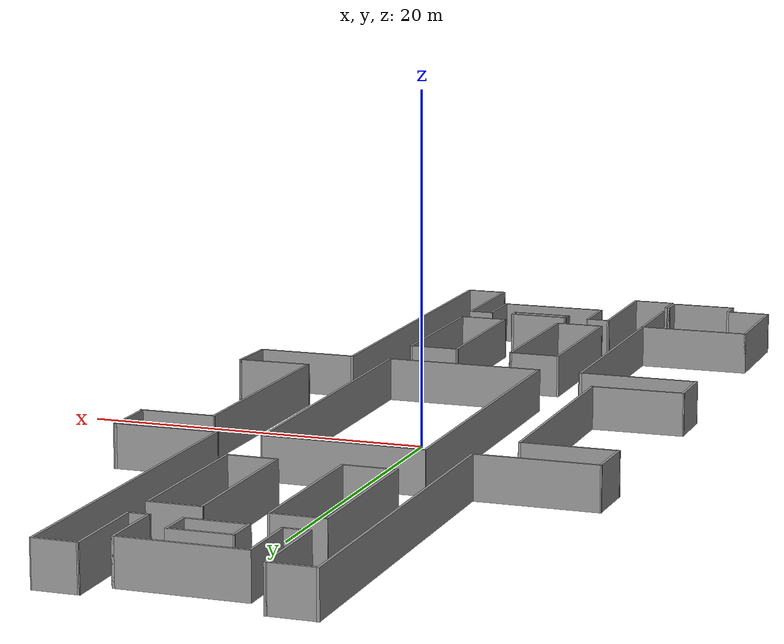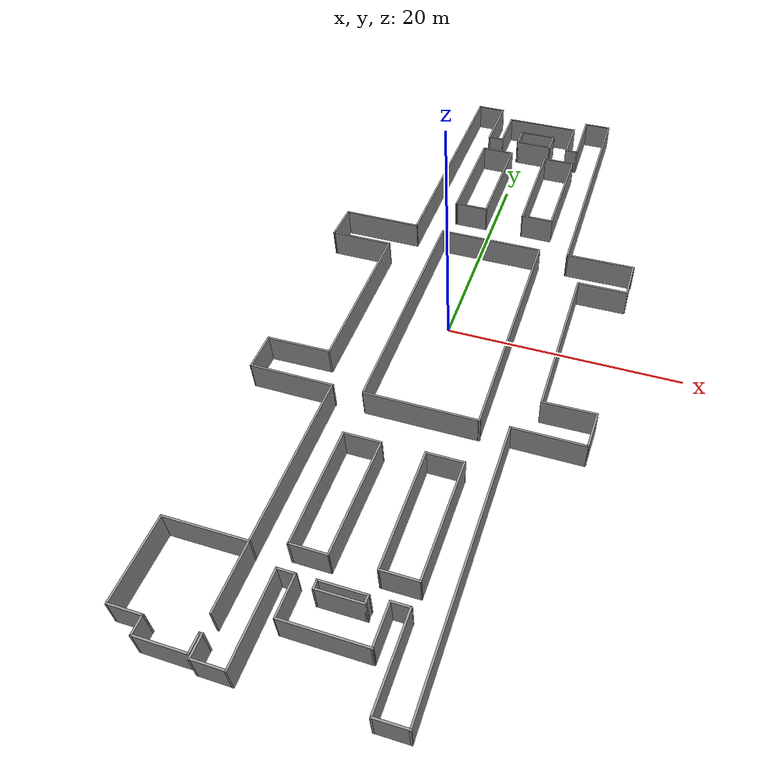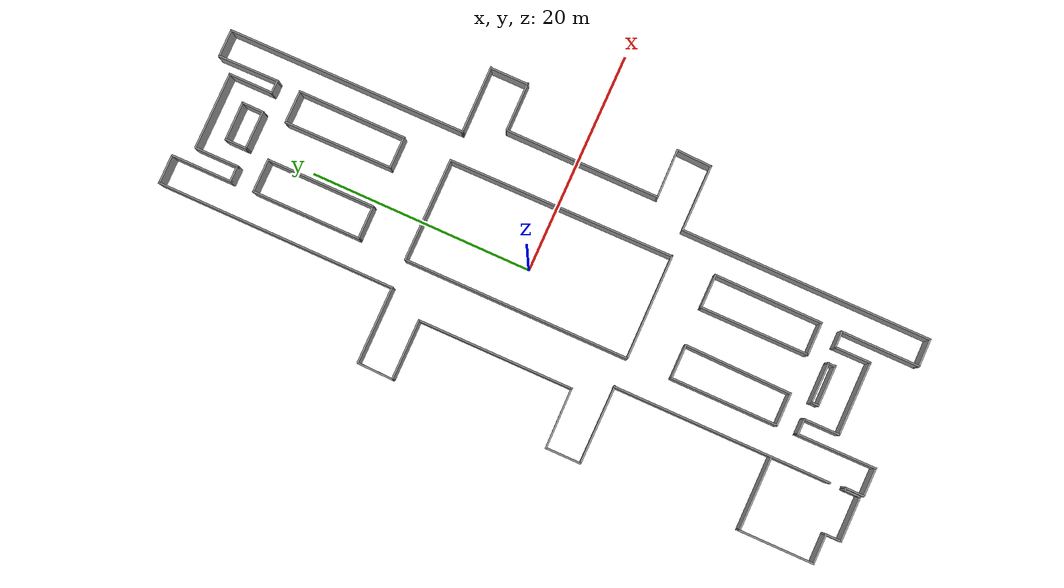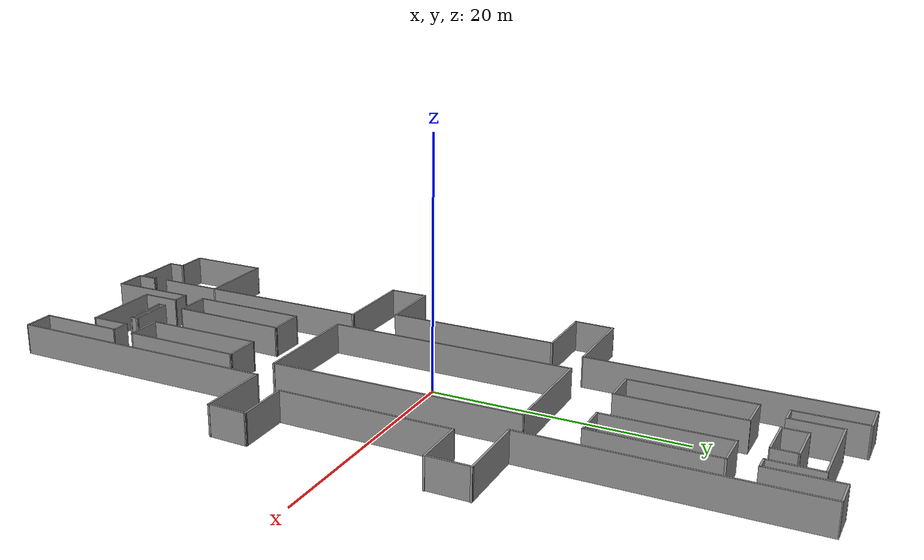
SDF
<?xml version='1.0'?>
<sdf version='1.7'>
  <model name='f21_wall_full'>
    <pose>0.508915 -0.874655 0 0 -0 0</pose>
    <link name='Wall_0'>
      <collision name='Wall_0_Collision'>
        <geometry>
          <box>
            <size>14 0.15 2.5</size>
          </box>
        </geometry>
        <pose>0 0 1.25 0 -0 0</pose>
      </collision>
      <visual name='Wall_0_Visual'>
        <pose>0 0 1.25 0 -0 0</pose>
        <geometry>
          <box>
            <size>14 0.15 2.5</size>
          </box>
        </geometry>
        <material>
          <script>
            <uri>file://media/materials/scripts/gazebo.material</uri>
            <name>Gazebo/Grey</name>
          </script>
          <ambient>1 1 1 1</ambient>
        </material>
        <meta>
          <layer>0</layer>
        </meta>
      </visual>
      <pose>-8.23501 0.501964 0 0 -0 1.5708</pose>
    </link>
    <link name='Wall_10'>
      <collision name='Wall_10_Collision'>
        <geometry>
          <box>
            <size>5.5 0.15 2.5</size>
          </box>
        </geometry>
        <pose>0 0 1.25 0 -0 0</pose>
      </collision>
      <visual name='Wall_10_Visual'>
        <pose>0 0 1.25 0 -0 0</pose>
        <geometry>
          <box>
            <size>5.5 0.15 2.5</size>
          </box>
        </geometry>
        <material>
          <script>
            <uri>file://media/materials/scripts/gazebo.material</uri>
            <name>Gazebo/Grey</name>
          </script>
          <ambient>1 1 1 1</ambient>
        </material>
        <meta>
          <layer>0</layer>
        </meta>
      </visual>
      <pose>-10.9094 7.42631 0 0 -0 0</pose>
    </link>
    <link name='Wall_100'>
      <collision name='Wall_100_Collision'>
        <geometry>
          <box>
            <size>6.96941 0.15 2.5</size>
          </box>
        </geometry>
        <pose>0 0 1.25 0 -0 0</pose>
      </collision>
      <visual name='Wall_100_Visual'>
        <pose>0 0 1.25 0 -0 0</pose>
        <geometry>
          <box>
            <size>6.96941 0.15 2.5</size>
          </box>
        </geometry>
        <material>
          <script>
            <uri>file://media/materials/scripts/gazebo.material</uri>
            <name>Gazebo/Grey</name>
          </script>
          <ambient>1 1 1 1</ambient>
        </material>
        <meta>
          <layer>0</layer>
        </meta>
      </visual>
      <pose>0.726087 30.4362 0 0 -0 0</pose>
    </link>
    <link name='Wall_101'>
      <collision name='Wall_101_Collision'>
        <geometry>
          <box>
            <size>4 0.15 2.5</size>
          </box>
        </geometry>
        <pose>0 0 1.25 0 -0 0</pose>
      </collision>
      <visual name='Wall_101_Visual'>
        <pose>0 0 1.25 0 -0 0</pose>
        <geometry>
          <box>
            <size>4 0.15 2.5</size>
          </box>
        </geometry>
        <material>
          <script>
            <uri>file://media/materials/scripts/gazebo.material</uri>
            <name>Gazebo/Grey</name>
          </script>
          <ambient>1 1 1 1</ambient>
        </material>
        <meta>
          <layer>0</layer>
        </meta>
      </visual>
      <pose>4.13579 28.5112 0 0 -0 -1.5708</pose>
    </link>
    <link name='Wall_103'>
      <collision name='Wall_103_Collision'>
        <geometry>
          <box>
            <size>2 0.15 2.5</size>
          </box>
        </geometry>
        <pose>0 0 1.25 0 -0 0</pose>
      </collision>
      <visual name='Wall_103_Visual'>
        <pose>0 0 1.25 0 -0 0</pose>
        <geometry>
          <box>
            <size>2 0.15 2.5</size>
          </box>
        </geometry>
        <material>
          <script>
            <uri>file://media/materials/scripts/gazebo.material</uri>
            <name>Gazebo/Grey</name>
          </script>
          <ambient>1 1 1 1</ambient>
        </material>
        <meta>
          <layer>0</layer>
        </meta>
      </visual>
      <pose>-1.00987 27.4939 0 0 -0 -1.5708</pose>
    </link>
    <link name='Wall_104'>
      <collision name='Wall_104_Collision'>
        <geometry>
          <box>
            <size>3.5 0.15 2.5</size>
          </box>
        </geometry>
        <pose>0 0 1.25 0 -0 0</pose>
      </collision>
      <visual name='Wall_104_Visual'>
        <pose>0 0 1.25 0 -0 0</pose>
        <geometry>
          <box>
            <size>3.5 0.15 2.5</size>
          </box>
        </geometry>
        <material>
          <script>
            <uri>file://media/materials/scripts/gazebo.material</uri>
            <name>Gazebo/Grey</name>
          </script>
          <ambient>1 1 1 1</ambient>
        </material>
        <meta>
          <layer>0</layer>
        </meta>
      </visual>
      <pose>0.665126 26.5689 0 0 -0 0</pose>
    </link>
    <link name='Wall_105'>
      <collision name='Wall_105_Collision'>
        <geometry>
          <box>
            <size>2 0.15 2.5</size>
          </box>
        </geometry>
        <pose>0 0 1.25 0 -0 0</pose>
      </collision>
      <visual name='Wall_105_Visual'>
        <pose>0 0 1.25 0 -0 0</pose>
        <geometry>
          <box>
            <size>2 0.15 2.5</size>
          </box>
        </geometry>
        <material>
          <script>
            <uri>file://media/materials/scripts/gazebo.material</uri>
            <name>Gazebo/Grey</name>
          </script>
          <ambient>1 1 1 1</ambient>
        </material>
        <meta>
          <layer>0</layer>
        </meta>
      </visual>
      <pose>2.35387 27.4939 0 0 -0 1.55594</pose>
    </link>
    <link name='Wall_12'>
      <collision name='Wall_12_Collision'>
        <geometry>
          <box>
            <size>7.10388 0.15 2.5</size>
          </box>
        </geometry>
        <pose>0 0 1.25 0 -0 0</pose>
      </collision>
      <visual name='Wall_12_Visual'>
        <pose>0 0 1.25 0 -0 0</pose>
        <geometry>
          <box>
            <size>7.10388 0.15 2.5</size>
          </box>
        </geometry>
        <material>
          <script>
            <uri>file://media/materials/scripts/gazebo.material</uri>
            <name>Gazebo/Grey</name>
          </script>
          <ambient>1 1 1 1</ambient>
        </material>
        <meta>
          <layer>0</layer>
        </meta>
      </visual>
      <pose>-10.0796 -9.60166 0 0 -0 3.13651</pose>
    </link>
    <link name='Wall_13'>
      <collision name='Wall_13_Collision'>
        <geometry>
          <box>
            <size>3.25 0.15 2.5</size>
          </box>
        </geometry>
        <pose>0 0 1.25 0 -0 0</pose>
      </collision>
      <visual name='Wall_13_Visual'>
        <pose>0 0 1.25 0 -0 0</pose>
        <geometry>
          <box>
            <size>3.25 0.15 2.5</size>
          </box>
        </geometry>
        <material>
          <script>
            <uri>file://media/materials/scripts/gazebo.material</uri>
            <name>Gazebo/Grey</name>
          </script>
          <ambient>1 1 1 1</ambient>
        </material>
        <meta>
          <layer>0</layer>
        </meta>
      </visual>
      <pose>-13.5565 -8.03397 0 0 -0 1.5708</pose>
    </link>
    <link name='Wall_14'>
      <collision name='Wall_14_Collision'>
        <geometry>
          <box>
            <size>5.45226 0.15 2.5</size>
          </box>
        </geometry>
        <pose>0 0 1.25 0 -0 0</pose>
      </collision>
      <visual name='Wall_14_Visual'>
        <pose>0 0 1.25 0 -0 0</pose>
        <geometry>
          <box>
            <size>5.45226 0.15 2.5</size>
          </box>
        </geometry>
        <material>
          <script>
            <uri>file://media/materials/scripts/gazebo.material</uri>
            <name>Gazebo/Grey</name>
          </script>
          <ambient>1 1 1 1</ambient>
        </material>
        <meta>
          <layer>0</layer>
        </meta>
      </visual>
      <pose>-10.9056 -6.45062 0 0 -0 0.012581</pose>
    </link>
    <link name='Wall_16'>
      <collision name='Wall_16_Collision'>
        <geometry>
          <box>
            <size>6.09869 0.15 2.5</size>
          </box>
        </geometry>
        <pose>0 0 1.25 0 -0 0</pose>
      </collision>
      <visual name='Wall_16_Visual'>
        <pose>0 0 1.25 0 -0 0</pose>
        <geometry>
          <box>
            <size>6.09869 0.15 2.5</size>
          </box>
        </geometry>
        <material>
          <script>
            <uri>file://media/materials/scripts/gazebo.material</uri>
            <name>Gazebo/Grey</name>
          </script>
          <ambient>1 1 1 1</ambient>
        </material>
        <meta>
          <layer>0</layer>
        </meta>
      </visual>
      <pose>10.6113 10.6598 0 0 -0 0.009045</pose>
    </link>
    <link name='Wall_17'>
      <collision name='Wall_17_Collision'>
        <geometry>
          <box>
            <size>3.5 0.15 2.5</size>
          </box>
        </geometry>
        <pose>0 0 1.25 0 -0 0</pose>
      </collision>
      <visual name='Wall_17_Visual'>
        <pose>0 0 1.25 0 -0 0</pose>
        <geometry>
          <box>
            <size>3.5 0.15 2.5</size>
          </box>
        </geometry>
        <material>
          <script>
            <uri>file://media/materials/scripts/gazebo.material</uri>
            <name>Gazebo/Grey</name>
          </script>
          <ambient>1 1 1 1</ambient>
        </material>
        <meta>
          <layer>0</layer>
        </meta>
      </visual>
      <pose>13.5317 9.01168 0 0 -0 -1.5708</pose>
    </link>
    <link name='Wall_18'>
      <collision name='Wall_18_Collision'>
        <geometry>
          <box>
            <size>4.46718 0.15 2.5</size>
          </box>
        </geometry>
        <pose>0 0 1.25 0 -0 0</pose>
      </collision>
      <visual name='Wall_18_Visual'>
        <pose>0 0 1.25 0 -0 0</pose>
        <geometry>
          <box>
            <size>4.46718 0.15 2.5</size>
          </box>
        </geometry>
        <material>
          <script>
            <uri>file://media/materials/scripts/gazebo.material</uri>
            <name>Gazebo/Grey</name>
          </script>
          <ambient>1 1 1 1</ambient>
        </material>
        <meta>
          <layer>0</layer>
        </meta>
      </visual>
      <pose>11.427 7.3229 0 0 -0 -3.13521</pose>
    </link>
    <link name='Wall_19'>
      <collision name='Wall_19_Collision'>
        <geometry>
          <box>
            <size>13.9255 0.15 2.5</size>
          </box>
        </geometry>
        <pose>0 0 1.25 0 -0 0</pose>
      </collision>
      <visual name='Wall_19_Visual'>
        <pose>0 0 1.25 0 -0 0</pose>
        <geometry>
          <box>
            <size>13.9255 0.15 2.5</size>
          </box>
        </geometry>
        <material>
          <script>
            <uri>file://media/materials/scripts/gazebo.material</uri>
            <name>Gazebo/Grey</name>
          </script>
          <ambient>1 1 1 1</ambient>
        </material>
        <meta>
          <layer>0</layer>
        </meta>
      </visual>
      <pose>9.26384 0.421354 0 0 -0 -1.57147</pose>
    </link>
    <link name='Wall_20'>
      <collision name='Wall_20_Collision'>
        <geometry>
          <box>
            <size>4.43169 0.15 2.5</size>
          </box>
        </geometry>
        <pose>0 0 1.25 0 -0 0</pose>
      </collision>
      <visual name='Wall_20_Visual'>
        <pose>0 0 1.25 0 -0 0</pose>
        <geometry>
          <box>
            <size>4.43169 0.15 2.5</size>
          </box>
        </geometry>
        <material>
          <script>
            <uri>file://media/materials/scripts/gazebo.material</uri>
            <name>Gazebo/Grey</name>
          </script>
          <ambient>1 1 1 1</ambient>
        </material>
        <meta>
          <layer>0</layer>
        </meta>
      </visual>
      <pose>11.3997 -6.43782 0 0 -0 0.017438</pose>
    </link>
    <link name='Wall_21'>
      <collision name='Wall_21_Collision'>
        <geometry>
          <box>
            <size>3.25669 0.15 2.5</size>
          </box>
        </geometry>
        <pose>0 0 1.25 0 -0 0</pose>
      </collision>
      <visual name='Wall_21_Visual'>
        <pose>0 0 1.25 0 -0 0</pose>
        <geometry>
          <box>
            <size>3.25669 0.15 2.5</size>
          </box>
        </geometry>
        <material>
          <script>
            <uri>file://media/materials/scripts/gazebo.material</uri>
            <name>Gazebo/Grey</name>
          </script>
          <ambient>1 1 1 1</ambient>
        </material>
        <meta>
          <layer>0</layer>
        </meta>
      </visual>
      <pose>13.4865 -7.95323 0 0 -0 -1.6054</pose>
    </link>
    <link name='Wall_22'>
      <collision name='Wall_22_Collision'>
        <geometry>
          <box>
            <size>6 0.15 2.5</size>
          </box>
        </geometry>
        <pose>0 0 1.25 0 -0 0</pose>
      </collision>
      <visual name='Wall_22_Visual'>
        <pose>0 0 1.25 0 -0 0</pose>
        <geometry>
          <box>
            <size>6 0.15 2.5</size>
          </box>
        </geometry>
        <material>
          <script>
            <uri>file://media/materials/scripts/gazebo.material</uri>
            <name>Gazebo/Grey</name>
          </script>
          <ambient>1 1 1 1</ambient>
        </material>
        <meta>
          <layer>0</layer>
        </meta>
      </visual>
      <pose>10.528 -9.50596 0 0 -0 3.14159</pose>
    </link>
    <link name='Wall_23'>
      <collision name='Wall_23_Collision'>
        <geometry>
          <box>
            <size>22.523 0.15 2.5</size>
          </box>
        </geometry>
        <pose>0 0 1.25 0 -0 0</pose>
      </collision>
      <visual name='Wall_23_Visual'>
        <pose>0 0 1.25 0 -0 0</pose>
        <geometry>
          <box>
            <size>22.523 0.15 2.5</size>
          </box>
        </geometry>
        <material>
          <script>
            <uri>file://media/materials/scripts/gazebo.material</uri>
            <name>Gazebo/Grey</name>
          </script>
          <ambient>1 1 1 1</ambient>
        </material>
        <meta>
          <layer>0</layer>
        </meta>
      </visual>
      <pose>7.57788 -20.6922 0 0 -0 -1.57123</pose>
    </link>
    <link name='Wall_24'>
      <collision name='Wall_24_Collision'>
        <geometry>
          <box>
            <size>2.54909 0.15 2.5</size>
          </box>
        </geometry>
        <pose>0 0 1.25 0 -0 0</pose>
      </collision>
      <visual name='Wall_24_Visual'>
        <pose>0 0 1.25 0 -0 0</pose>
        <geometry>
          <box>
            <size>2.54909 0.15 2.5</size>
          </box>
        </geometry>
        <material>
          <script>
            <uri>file://media/materials/scripts/gazebo.material</uri>
            <name>Gazebo/Grey</name>
          </script>
          <ambient>1 1 1 1</ambient>
        </material>
        <meta>
          <layer>0</layer>
        </meta>
      </visual>
      <pose>6.37349 -31.8788 0 0 -0 -3.13284</pose>
    </link>
    <link name='Wall_25'>
      <collision name='Wall_25_Collision'>
        <geometry>
          <box>
            <size>7.07461 0.15 2.5</size>
          </box>
        </geometry>
        <pose>0 0 1.25 0 -0 0</pose>
      </collision>
      <visual name='Wall_25_Visual'>
        <pose>0 0 1.25 0 -0 0</pose>
        <geometry>
          <box>
            <size>7.07461 0.15 2.5</size>
          </box>
        </geometry>
        <material>
          <script>
            <uri>file://media/materials/scripts/gazebo.material</uri>
            <name>Gazebo/Grey</name>
          </script>
          <ambient>1 1 1 1</ambient>
        </material>
        <meta>
          <layer>0</layer>
        </meta>
      </visual>
      <pose>5.1841 -28.4371 0 0 -0 1.56788</pose>
    </link>
    <link name='Wall_26'>
      <collision name='Wall_26_Collision'>
        <geometry>
          <box>
            <size>1.5483 0.15 2.5</size>
          </box>
        </geometry>
        <pose>0 0 1.25 0 -0 0</pose>
      </collision>
      <visual name='Wall_26_Visual'>
        <pose>0 0 1.25 0 -0 0</pose>
        <geometry>
          <box>
            <size>1.5483 0.15 2.5</size>
          </box>
        </geometry>
        <material>
          <script>
            <uri>file://media/materials/scripts/gazebo.material</uri>
            <name>Gazebo/Grey</name>
          </script>
          <ambient>1 1 1 1</ambient>
        </material>
        <meta>
          <layer>0</layer>
        </meta>
      </visual>
      <pose>4.4951 -24.9486 0 0 -0 -3.14082</pose>
    </link>
    <link name='Wall_27'>
      <collision name='Wall_27_Collision'>
        <geometry>
          <box>
            <size>3.2893 0.15 2.5</size>
          </box>
        </geometry>
        <pose>0 0 1.25 0 -0 0</pose>
      </collision>
      <visual name='Wall_27_Visual'>
        <pose>0 0 1.25 0 -0 0</pose>
        <geometry>
          <box>
            <size>3.2893 0.15 2.5</size>
          </box>
        </geometry>
        <material>
          <script>
            <uri>file://media/materials/scripts/gazebo.material</uri>
            <name>Gazebo/Grey</name>
          </script>
          <ambient>1 1 1 1</ambient>
        </material>
        <meta>
          <layer>0</layer>
        </meta>
      </visual>
      <pose>3.79733 -26.5341 0 0 -0 -1.56995</pose>
    </link>
    <link name='Wall_28'>
      <collision name='Wall_28_Collision'>
        <geometry>
          <box>
            <size>6.6453 0.15 2.5</size>
          </box>
        </geometry>
        <pose>0 0 1.25 0 -0 0</pose>
      </collision>
      <visual name='Wall_28_Visual'>
        <pose>0 0 1.25 0 -0 0</pose>
        <geometry>
          <box>
            <size>6.6453 0.15 2.5</size>
          </box>
        </geometry>
        <material>
          <script>
            <uri>file://media/materials/scripts/gazebo.material</uri>
            <name>Gazebo/Grey</name>
          </script>
          <ambient>1 1 1 1</ambient>
        </material>
        <meta>
          <layer>0</layer>
        </meta>
      </visual>
      <pose>0.551006 -28.1012 0 0 -0 3.14083</pose>
    </link>
    <link name='Wall_29'>
      <collision name='Wall_29_Collision'>
        <geometry>
          <box>
            <size>3.27006 0.15 2.5</size>
          </box>
        </geometry>
        <pose>0 0 1.25 0 -0 0</pose>
      </collision>
      <visual name='Wall_29_Visual'>
        <pose>0 0 1.25 0 -0 0</pose>
        <geometry>
          <box>
            <size>3.27006 0.15 2.5</size>
          </box>
        </geometry>
        <material>
          <script>
            <uri>file://media/materials/scripts/gazebo.material</uri>
            <name>Gazebo/Grey</name>
          </script>
          <ambient>1 1 1 1</ambient>
        </material>
        <meta>
          <layer>0</layer>
        </meta>
      </visual>
      <pose>-2.70138 -26.5387 0 0 -0 1.57383</pose>
    </link>
    <link name='Wall_3'>
      <collision name='Wall_3_Collision'>
        <geometry>
          <box>
            <size>20.25 0.15 2.5</size>
          </box>
        </geometry>
        <pose>0 0 1.25 0 -0 0</pose>
      </collision>
      <visual name='Wall_3_Visual'>
        <pose>0 0 1.25 0 -0 0</pose>
        <geometry>
          <box>
            <size>20.25 0.15 2.5</size>
          </box>
        </geometry>
        <material>
          <script>
            <uri>file://media/materials/scripts/gazebo.material</uri>
            <name>Gazebo/Grey</name>
          </script>
          <ambient>1 1 1 1</ambient>
        </material>
        <meta>
          <layer>0</layer>
        </meta>
      </visual>
      <pose>-4.08009 0.50083 0 0 -0 -1.5708</pose>
    </link>
    <link name='Wall_30'>
      <collision name='Wall_30_Collision'>
        <geometry>
          <box>
            <size>1.5 0.15 2.5</size>
          </box>
        </geometry>
        <pose>0 0 1.25 0 -0 0</pose>
      </collision>
      <visual name='Wall_30_Visual'>
        <pose>0 0 1.25 0 -0 0</pose>
        <geometry>
          <box>
            <size>1.5 0.15 2.5</size>
          </box>
        </geometry>
        <material>
          <script>
            <uri>file://media/materials/scripts/gazebo.material</uri>
            <name>Gazebo/Grey</name>
          </script>
          <ambient>1 1 1 1</ambient>
        </material>
        <meta>
          <layer>0</layer>
        </meta>
      </visual>
      <pose>-3.38111 -24.9787 0 0 -0 3.14159</pose>
    </link>
    <link name='Wall_31'>
      <collision name='Wall_31_Collision'>
        <geometry>
          <box>
            <size>7.12056 0.15 2.5</size>
          </box>
        </geometry>
        <pose>0 0 1.25 0 -0 0</pose>
      </collision>
      <visual name='Wall_31_Visual'>
        <pose>0 0 1.25 0 -0 0</pose>
        <geometry>
          <box>
            <size>7.12056 0.15 2.5</size>
          </box>
        </geometry>
        <material>
          <script>
            <uri>file://media/materials/scripts/gazebo.material</uri>
            <name>Gazebo/Grey</name>
          </script>
          <ambient>1 1 1 1</ambient>
        </material>
        <meta>
          <layer>0</layer>
        </meta>
      </visual>
      <pose>-4.03958 -28.4639 0 0 -0 -1.56605</pose>
    </link>
    <link name='Wall_34'>
      <collision name='Wall_34_Collision'>
        <geometry>
          <box>
            <size>2.5494 0.15 2.5</size>
          </box>
        </geometry>
        <pose>0 0 1.25 0 -0 0</pose>
      </collision>
      <visual name='Wall_34_Visual'>
        <pose>0 0 1.25 0 -0 0</pose>
        <geometry>
          <box>
            <size>2.5494 0.15 2.5</size>
          </box>
        </geometry>
        <material>
          <script>
            <uri>file://media/materials/scripts/gazebo.material</uri>
            <name>Gazebo/Grey</name>
          </script>
          <ambient>1 1 1 1</ambient>
        </material>
        <meta>
          <layer>0</layer>
        </meta>
      </visual>
      <pose>-5.29286 -31.9303 0 0 -0 3.14159</pose>
    </link>
    <link name='Wall_35'>
      <collision name='Wall_35_Collision'>
        <geometry>
          <box>
            <size>1.75 0.15 2.5</size>
          </box>
        </geometry>
        <pose>0 0 1.25 0 -0 0</pose>
      </collision>
      <visual name='Wall_35_Visual'>
        <pose>0 0 1.25 0 -0 0</pose>
        <geometry>
          <box>
            <size>1.75 0.15 2.5</size>
          </box>
        </geometry>
        <material>
          <script>
            <uri>file://media/materials/scripts/gazebo.material</uri>
            <name>Gazebo/Grey</name>
          </script>
          <ambient>1 1 1 1</ambient>
        </material>
        <meta>
          <layer>0</layer>
        </meta>
      </visual>
      <pose>-6.49256 -31.1303 0 0 -0 1.5708</pose>
    </link>
    <link name='Wall_36'>
      <collision name='Wall_36_Collision'>
        <geometry>
          <box>
            <size>0.340619 0.15 2.5</size>
          </box>
        </geometry>
        <pose>0 0 1.25 0 -0 0</pose>
      </collision>
      <visual name='Wall_36_Visual'>
        <pose>0 0 1.25 0 -0 0</pose>
        <geometry>
          <box>
            <size>0.340619 0.15 2.5</size>
          </box>
        </geometry>
        <material>
          <script>
            <uri>file://media/materials/scripts/gazebo.material</uri>
            <name>Gazebo/Grey</name>
          </script>
          <ambient>1 1 1 1</ambient>
        </material>
        <meta>
          <layer>0</layer>
        </meta>
      </visual>
      <pose>-6.58787 -30.3303 0 0 -0 3.14159</pose>
    </link>
    <link name='Wall_37'>
      <collision name='Wall_37_Collision'>
        <geometry>
          <box>
            <size>1.5 0.15 2.5</size>
          </box>
        </geometry>
        <pose>0 0 1.25 0 -0 0</pose>
      </collision>
      <visual name='Wall_37_Visual'>
        <pose>0 0 1.25 0 -0 0</pose>
        <geometry>
          <box>
            <size>1.5 0.15 2.5</size>
          </box>
        </geometry>
        <material>
          <script>
            <uri>file://media/materials/scripts/gazebo.material</uri>
            <name>Gazebo/Grey</name>
          </script>
          <ambient>1 1 1 1</ambient>
        </material>
        <meta>
          <layer>0</layer>
        </meta>
      </visual>
      <pose>-6.68318 -31.0053 0 0 -0 -1.5708</pose>
    </link>
    <link name='Wall_38'>
      <collision name='Wall_38_Collision'>
        <geometry>
          <box>
            <size>4.11003 0.15 2.5</size>
          </box>
        </geometry>
        <pose>0 0 1.25 0 -0 0</pose>
      </collision>
      <visual name='Wall_38_Visual'>
        <pose>0 0 1.25 0 -0 0</pose>
        <geometry>
          <box>
            <size>4.11003 0.15 2.5</size>
          </box>
        </geometry>
        <material>
          <script>
            <uri>file://media/materials/scripts/gazebo.material</uri>
            <name>Gazebo/Grey</name>
          </script>
          <ambient>1 1 1 1</ambient>
        </material>
        <meta>
          <layer>0</layer>
        </meta>
      </visual>
      <pose>-8.66317 -31.6803 0 0 -0 3.14159</pose>
    </link>
    <link name='Wall_39'>
      <collision name='Wall_39_Collision'>
        <geometry>
          <box>
            <size>1.5 0.15 2.5</size>
          </box>
        </geometry>
        <pose>0 0 1.25 0 -0 0</pose>
      </collision>
      <visual name='Wall_39_Visual'>
        <pose>0 0 1.25 0 -0 0</pose>
        <geometry>
          <box>
            <size>1.5 0.15 2.5</size>
          </box>
        </geometry>
        <material>
          <script>
            <uri>file://media/materials/scripts/gazebo.material</uri>
            <name>Gazebo/Grey</name>
          </script>
          <ambient>1 1 1 1</ambient>
        </material>
        <meta>
          <layer>0</layer>
        </meta>
      </visual>
      <pose>-10.6432 -31.0053 0 0 -0 1.5708</pose>
    </link>
    <link name='Wall_4'>
      <collision name='Wall_4_Collision'>
        <geometry>
          <box>
            <size>9.41279 0.15 2.5</size>
          </box>
        </geometry>
        <pose>0 0 1.25 0 -0 0</pose>
      </collision>
      <visual name='Wall_4_Visual'>
        <pose>0 0 1.25 0 -0 0</pose>
        <geometry>
          <box>
            <size>9.41279 0.15 2.5</size>
          </box>
        </geometry>
        <material>
          <script>
            <uri>file://media/materials/scripts/gazebo.material</uri>
            <name>Gazebo/Grey</name>
          </script>
          <ambient>1 1 1 1</ambient>
        </material>
        <meta>
          <layer>0</layer>
        </meta>
      </visual>
      <pose>0.613156 -9.59567 0 0 -0 0.003321</pose>
    </link>
    <link name='Wall_40'>
      <collision name='Wall_40_Collision'>
        <geometry>
          <box>
            <size>2.75 0.15 2.5</size>
          </box>
        </geometry>
        <pose>0 0 1.25 0 -0 0</pose>
      </collision>
      <visual name='Wall_40_Visual'>
        <pose>0 0 1.25 0 -0 0</pose>
        <geometry>
          <box>
            <size>2.75 0.15 2.5</size>
          </box>
        </geometry>
        <material>
          <script>
            <uri>file://media/materials/scripts/gazebo.material</uri>
            <name>Gazebo/Grey</name>
          </script>
          <ambient>1 1 1 1</ambient>
        </material>
        <meta>
          <layer>0</layer>
        </meta>
      </visual>
      <pose>-11.9432 -30.3303 0 0 -0 3.14159</pose>
    </link>
    <link name='Wall_41'>
      <collision name='Wall_41_Collision'>
        <geometry>
          <box>
            <size>6.75 0.15 2.5</size>
          </box>
        </geometry>
        <pose>0 0 1.25 0 -0 0</pose>
      </collision>
      <visual name='Wall_41_Visual'>
        <pose>0 0 1.25 0 -0 0</pose>
        <geometry>
          <box>
            <size>6.75 0.15 2.5</size>
          </box>
        </geometry>
        <material>
          <script>
            <uri>file://media/materials/scripts/gazebo.material</uri>
            <name>Gazebo/Grey</name>
          </script>
          <ambient>1 1 1 1</ambient>
        </material>
        <meta>
          <layer>0</layer>
        </meta>
      </visual>
      <pose>-13.2432 -27.0303 0 0 -0 1.5708</pose>
    </link>
    <link name='Wall_42'>
      <collision name='Wall_42_Collision'>
        <geometry>
          <box>
            <size>6.75 0.15 2.5</size>
          </box>
        </geometry>
        <pose>0 0 1.25 0 -0 0</pose>
      </collision>
      <visual name='Wall_42_Visual'>
        <pose>0 0 1.25 0 -0 0</pose>
        <geometry>
          <box>
            <size>6.75 0.15 2.5</size>
          </box>
        </geometry>
        <material>
          <script>
            <uri>file://media/materials/scripts/gazebo.material</uri>
            <name>Gazebo/Grey</name>
          </script>
          <ambient>1 1 1 1</ambient>
        </material>
        <meta>
          <layer>0</layer>
        </meta>
      </visual>
      <pose>-9.94316 -23.7303 0 0 -0 0</pose>
    </link>
    <link name='Wall_45'>
      <collision name='Wall_45_Collision'>
        <geometry>
          <box>
            <size>19.5 0.15 2.5</size>
          </box>
        </geometry>
        <pose>0 0 1.25 0 -0 0</pose>
      </collision>
      <visual name='Wall_45_Visual'>
        <pose>0 0 1.25 0 -0 0</pose>
        <geometry>
          <box>
            <size>19.5 0.15 2.5</size>
          </box>
        </geometry>
        <material>
          <script>
            <uri>file://media/materials/scripts/gazebo.material</uri>
            <name>Gazebo/Grey</name>
          </script>
          <ambient>1 1 1 1</ambient>
        </material>
        <meta>
          <layer>0</layer>
        </meta>
      </visual>
      <pose>-6.6451 -19.2756 0 0 -0 1.5708</pose>
    </link>
    <link name='Wall_48'>
      <collision name='Wall_48_Collision'>
        <geometry>
          <box>
            <size>9.65706 0.15 2.5</size>
          </box>
        </geometry>
        <pose>0 0 1.25 0 -0 0</pose>
      </collision>
      <visual name='Wall_48_Visual'>
        <pose>0 0 1.25 0 -0 0</pose>
        <geometry>
          <box>
            <size>9.65706 0.15 2.5</size>
          </box>
        </geometry>
        <material>
          <script>
            <uri>file://media/materials/scripts/gazebo.material</uri>
            <name>Gazebo/Grey</name>
          </script>
          <ambient>1 1 1 1</ambient>
        </material>
        <meta>
          <layer>0</layer>
        </meta>
      </visual>
      <pose>-4.0769 -18.3613 0 0 -0 -1.57197</pose>
    </link>
    <link name='Wall_49'>
      <collision name='Wall_49_Collision'>
        <geometry>
          <box>
            <size>3 0.15 2.5</size>
          </box>
        </geometry>
        <pose>0 0 1.25 0 -0 0</pose>
      </collision>
      <visual name='Wall_49_Visual'>
        <pose>0 0 1.25 0 -0 0</pose>
        <geometry>
          <box>
            <size>3 0.15 2.5</size>
          </box>
        </geometry>
        <material>
          <script>
            <uri>file://media/materials/scripts/gazebo.material</uri>
            <name>Gazebo/Grey</name>
          </script>
          <ambient>1 1 1 1</ambient>
        </material>
        <meta>
          <layer>0</layer>
        </meta>
      </visual>
      <pose>-2.65748 -23.1033 0 0 -0 0</pose>
    </link>
    <link name='Wall_5'>
      <collision name='Wall_5_Collision'>
        <geometry>
          <box>
            <size>20.2855 0.15 2.5</size>
          </box>
        </geometry>
        <pose>0 0 1.25 0 -0 0</pose>
      </collision>
      <visual name='Wall_5_Visual'>
        <pose>0 0 1.25 0 -0 0</pose>
        <geometry>
          <box>
            <size>20.2855 0.15 2.5</size>
          </box>
        </geometry>
        <material>
          <script>
            <uri>file://media/materials/scripts/gazebo.material</uri>
            <name>Gazebo/Grey</name>
          </script>
          <ambient>1 1 1 1</ambient>
        </material>
        <meta>
          <layer>0</layer>
        </meta>
      </visual>
      <pose>5.12441 0.487148 0 0 -0 1.57869</pose>
    </link>
    <link name='Wall_50'>
      <collision name='Wall_50_Collision'>
        <geometry>
          <box>
            <size>9.64647 0.15 2.5</size>
          </box>
        </geometry>
        <pose>0 0 1.25 0 -0 0</pose>
      </collision>
      <visual name='Wall_50_Visual'>
        <pose>0 0 1.25 0 -0 0</pose>
        <geometry>
          <box>
            <size>9.64647 0.15 2.5</size>
          </box>
        </geometry>
        <material>
          <script>
            <uri>file://media/materials/scripts/gazebo.material</uri>
            <name>Gazebo/Grey</name>
          </script>
          <ambient>1 1 1 1</ambient>
        </material>
        <meta>
          <layer>0</layer>
        </meta>
      </visual>
      <pose>-1.16406 -18.3555 0 0 -0 1.55638</pose>
    </link>
    <link name='Wall_51'>
      <collision name='Wall_51_Collision'>
        <geometry>
          <box>
            <size>3 0.15 2.5</size>
          </box>
        </geometry>
        <pose>0 0 1.25 0 -0 0</pose>
      </collision>
      <visual name='Wall_51_Visual'>
        <pose>0 0 1.25 0 -0 0</pose>
        <geometry>
          <box>
            <size>3 0.15 2.5</size>
          </box>
        </geometry>
        <material>
          <script>
            <uri>file://media/materials/scripts/gazebo.material</uri>
            <name>Gazebo/Grey</name>
          </script>
          <ambient>1 1 1 1</ambient>
        </material>
        <meta>
          <layer>0</layer>
        </meta>
      </visual>
      <pose>-2.52063 -13.6078 0 0 -0 3.14159</pose>
    </link>
    <link name='Wall_53'>
      <collision name='Wall_53_Collision'>
        <geometry>
          <box>
            <size>3.088 0.15 2.5</size>
          </box>
        </geometry>
        <pose>0 0 1.25 0 -0 0</pose>
      </collision>
      <visual name='Wall_53_Visual'>
        <pose>0 0 1.25 0 -0 0</pose>
        <geometry>
          <box>
            <size>3.088 0.15 2.5</size>
          </box>
        </geometry>
        <material>
          <script>
            <uri>file://media/materials/scripts/gazebo.material</uri>
            <name>Gazebo/Grey</name>
          </script>
          <ambient>1 1 1 1</ambient>
        </material>
        <meta>
          <layer>0</layer>
        </meta>
      </visual>
      <pose>3.77648 -13.5059 0 0 -0 -0.003732</pose>
    </link>
    <link name='Wall_54'>
      <collision name='Wall_54_Collision'>
        <geometry>
          <box>
            <size>9.75018 0.15 2.5</size>
          </box>
        </geometry>
        <pose>0 0 1.25 0 -0 0</pose>
      </collision>
      <visual name='Wall_54_Visual'>
        <pose>0 0 1.25 0 -0 0</pose>
        <geometry>
          <box>
            <size>9.75018 0.15 2.5</size>
          </box>
        </geometry>
        <material>
          <script>
            <uri>file://media/materials/scripts/gazebo.material</uri>
            <name>Gazebo/Grey</name>
          </script>
          <ambient>1 1 1 1</ambient>
        </material>
        <meta>
          <layer>0</layer>
        </meta>
      </visual>
      <pose>5.21578 -18.3113 0 0 -0 -1.57698</pose>
    </link>
    <link name='Wall_55'>
      <collision name='Wall_55_Collision'>
        <geometry>
          <box>
            <size>3.02347 0.15 2.5</size>
          </box>
        </geometry>
        <pose>0 0 1.25 0 -0 0</pose>
      </collision>
      <visual name='Wall_55_Visual'>
        <pose>0 0 1.25 0 -0 0</pose>
        <geometry>
          <box>
            <size>3.02347 0.15 2.5</size>
          </box>
        </geometry>
        <material>
          <script>
            <uri>file://media/materials/scripts/gazebo.material</uri>
            <name>Gazebo/Grey</name>
          </script>
          <ambient>1 1 1 1</ambient>
        </material>
        <meta>
          <layer>0</layer>
        </meta>
      </visual>
      <pose>3.74982 -23.1152 0 0 -0 -3.13894</pose>
    </link>
    <link name='Wall_56'>
      <collision name='Wall_56_Collision'>
        <geometry>
          <box>
            <size>9.76858 0.15 2.5</size>
          </box>
        </geometry>
        <pose>0 0 1.25 0 -0 0</pose>
      </collision>
      <visual name='Wall_56_Visual'>
        <pose>0 0 1.25 0 -0 0</pose>
        <geometry>
          <box>
            <size>9.76858 0.15 2.5</size>
          </box>
        </geometry>
        <material>
          <script>
            <uri>file://media/materials/scripts/gazebo.material</uri>
            <name>Gazebo/Grey</name>
          </script>
          <ambient>1 1 1 1</ambient>
        </material>
        <meta>
          <layer>0</layer>
        </meta>
      </visual>
      <pose>2.31053 -18.3097 0 0 -0 1.57143</pose>
    </link>
    <link name='Wall_58'>
      <collision name='Wall_58_Collision'>
        <geometry>
          <box>
            <size>21.5132 0.15 2.5</size>
          </box>
        </geometry>
        <pose>0 0 1.25 0 -0 0</pose>
      </collision>
      <visual name='Wall_58_Visual'>
        <pose>0 0 1.25 0 -0 0</pose>
        <geometry>
          <box>
            <size>21.5132 0.15 2.5</size>
          </box>
        </geometry>
        <material>
          <script>
            <uri>file://media/materials/scripts/gazebo.material</uri>
            <name>Gazebo/Grey</name>
          </script>
          <ambient>1 1 1 1</ambient>
        </material>
        <meta>
          <layer>0</layer>
        </meta>
      </visual>
      <pose>-6.62645 21.2678 0 0 -0 1.56797</pose>
    </link>
    <link name='Wall_59'>
      <collision name='Wall_59_Collision'>
        <geometry>
          <box>
            <size>2.65407 0.15 2.5</size>
          </box>
        </geometry>
        <pose>0 0 1.25 0 -0 0</pose>
      </collision>
      <visual name='Wall_59_Visual'>
        <pose>0 0 1.25 0 -0 0</pose>
        <geometry>
          <box>
            <size>2.65407 0.15 2.5</size>
          </box>
        </geometry>
        <material>
          <script>
            <uri>file://media/materials/scripts/gazebo.material</uri>
            <name>Gazebo/Grey</name>
          </script>
          <ambient>1 1 1 1</ambient>
        </material>
        <meta>
          <layer>0</layer>
        </meta>
      </visual>
      <pose>-5.32097 31.9312 0 0 -0 0.004063</pose>
    </link>
    <link name='Wall_6'>
      <collision name='Wall_6_Collision'>
        <geometry>
          <box>
            <size>9.25 0.15 2.5</size>
          </box>
        </geometry>
        <pose>0 0 1.25 0 -0 0</pose>
      </collision>
      <visual name='Wall_6_Visual'>
        <pose>0 0 1.25 0 -0 0</pose>
        <geometry>
          <box>
            <size>9.25 0.15 2.5</size>
          </box>
        </geometry>
        <material>
          <script>
            <uri>file://media/materials/scripts/gazebo.material</uri>
            <name>Gazebo/Grey</name>
          </script>
          <ambient>1 1 1 1</ambient>
        </material>
        <meta>
          <layer>0</layer>
        </meta>
      </visual>
      <pose>0.49497 10.5546 0 0 -0 3.14159</pose>
    </link>
    <link name='Wall_60'>
      <collision name='Wall_60_Collision'>
        <geometry>
          <box>
            <size>5.5 0.15 2.5</size>
          </box>
        </geometry>
        <pose>0 0 1.25 0 -0 0</pose>
      </collision>
      <visual name='Wall_60_Visual'>
        <pose>0 0 1.25 0 -0 0</pose>
        <geometry>
          <box>
            <size>5.5 0.15 2.5</size>
          </box>
        </geometry>
        <material>
          <script>
            <uri>file://media/materials/scripts/gazebo.material</uri>
            <name>Gazebo/Grey</name>
          </script>
          <ambient>1 1 1 1</ambient>
        </material>
        <meta>
          <layer>0</layer>
        </meta>
      </visual>
      <pose>-4.06895 29.2612 0 0 -0 -1.5708</pose>
    </link>
    <link name='Wall_61'>
      <collision name='Wall_61_Collision'>
        <geometry>
          <box>
            <size>1.53533 0.15 2.5</size>
          </box>
        </geometry>
        <pose>0 0 1.25 0 -0 0</pose>
      </collision>
      <visual name='Wall_61_Visual'>
        <pose>0 0 1.25 0 -0 0</pose>
        <geometry>
          <box>
            <size>1.53533 0.15 2.5</size>
          </box>
        </geometry>
        <material>
          <script>
            <uri>file://media/materials/scripts/gazebo.material</uri>
            <name>Gazebo/Grey</name>
          </script>
          <ambient>1 1 1 1</ambient>
        </material>
        <meta>
          <layer>0</layer>
        </meta>
      </visual>
      <pose>-3.37628 26.5862 0 0 -0 0</pose>
    </link>
    <link name='Wall_63'>
      <collision name='Wall_63_Collision'>
        <geometry>
          <box>
            <size>3.52755 0.15 2.5</size>
          </box>
        </geometry>
        <pose>0 0 1.25 0 -0 0</pose>
      </collision>
      <visual name='Wall_63_Visual'>
        <pose>0 0 1.25 0 -0 0</pose>
        <geometry>
          <box>
            <size>3.52755 0.15 2.5</size>
          </box>
        </geometry>
        <material>
          <script>
            <uri>file://media/materials/scripts/gazebo.material</uri>
            <name>Gazebo/Grey</name>
          </script>
          <ambient>1 1 1 1</ambient>
        </material>
        <meta>
          <layer>0</layer>
        </meta>
      </visual>
      <pose>0.678874 28.429 0 0 -0 0.005989</pose>
    </link>
    <link name='Wall_65'>
      <collision name='Wall_65_Collision'>
        <geometry>
          <box>
            <size>1.25 0.15 2.5</size>
          </box>
        </geometry>
        <pose>0 0 1.25 0 -0 0</pose>
      </collision>
      <visual name='Wall_65_Visual'>
        <pose>0 0 1.25 0 -0 0</pose>
        <geometry>
          <box>
            <size>1.25 0.15 2.5</size>
          </box>
        </geometry>
        <material>
          <script>
            <uri>file://media/materials/scripts/gazebo.material</uri>
            <name>Gazebo/Grey</name>
          </script>
          <ambient>1 1 1 1</ambient>
        </material>
        <meta>
          <layer>0</layer>
        </meta>
      </visual>
      <pose>4.68182 26.5685 0 0 -0 0</pose>
    </link>
    <link name='Wall_66'>
      <collision name='Wall_66_Collision'>
        <geometry>
          <box>
            <size>5.48243 0.15 2.5</size>
          </box>
        </geometry>
        <pose>0 0 1.25 0 -0 0</pose>
      </collision>
      <visual name='Wall_66_Visual'>
        <pose>0 0 1.25 0 -0 0</pose>
        <geometry>
          <box>
            <size>5.48243 0.15 2.5</size>
          </box>
        </geometry>
        <material>
          <script>
            <uri>file://media/materials/scripts/gazebo.material</uri>
            <name>Gazebo/Grey</name>
          </script>
          <ambient>1 1 1 1</ambient>
        </material>
        <meta>
          <layer>0</layer>
        </meta>
      </visual>
      <pose>5.20206 29.2296 0 0 -0 1.58381</pose>
    </link>
    <link name='Wall_67'>
      <collision name='Wall_67_Collision'>
        <geometry>
          <box>
            <size>2.5 0.15 2.5</size>
          </box>
        </geometry>
        <pose>0 0 1.25 0 -0 0</pose>
      </collision>
      <visual name='Wall_67_Visual'>
        <pose>0 0 1.25 0 -0 0</pose>
        <geometry>
          <box>
            <size>2.5 0.15 2.5</size>
          </box>
        </geometry>
        <material>
          <script>
            <uri>file://media/materials/scripts/gazebo.material</uri>
            <name>Gazebo/Grey</name>
          </script>
          <ambient>1 1 1 1</ambient>
        </material>
        <meta>
          <layer>0</layer>
        </meta>
      </visual>
      <pose>6.38303 31.8956 0 0 -0 0</pose>
    </link>
    <link name='Wall_68'>
      <collision name='Wall_68_Collision'>
        <geometry>
          <box>
            <size>21.4128 0.15 2.5</size>
          </box>
        </geometry>
        <pose>0 0 1.25 0 -0 0</pose>
      </collision>
      <visual name='Wall_68_Visual'>
        <pose>0 0 1.25 0 -0 0</pose>
        <geometry>
          <box>
            <size>21.4128 0.15 2.5</size>
          </box>
        </geometry>
        <material>
          <script>
            <uri>file://media/materials/scripts/gazebo.material</uri>
            <name>Gazebo/Grey</name>
          </script>
          <ambient>1 1 1 1</ambient>
        </material>
        <meta>
          <layer>0</layer>
        </meta>
      </visual>
      <pose>7.59756 21.2642 0 0 -0 -1.56708</pose>
    </link>
    <link name='Wall_70'>
      <collision name='Wall_70_Collision'>
        <geometry>
          <box>
            <size>9.75 0.15 2.5</size>
          </box>
        </geometry>
        <pose>0 0 1.25 0 -0 0</pose>
      </collision>
      <visual name='Wall_70_Visual'>
        <pose>0 0 1.25 0 -0 0</pose>
        <geometry>
          <box>
            <size>9.75 0.15 2.5</size>
          </box>
        </geometry>
        <material>
          <script>
            <uri>file://media/materials/scripts/gazebo.material</uri>
            <name>Gazebo/Grey</name>
          </script>
          <ambient>1 1 1 1</ambient>
        </material>
        <meta>
          <layer>0</layer>
        </meta>
      </visual>
      <pose>-4.05554 19.6366 0 0 -0 -1.5708</pose>
    </link>
    <link name='Wall_71'>
      <collision name='Wall_71_Collision'>
        <geometry>
          <box>
            <size>3.00997 0.15 2.5</size>
          </box>
        </geometry>
        <pose>0 0 1.25 0 -0 0</pose>
      </collision>
      <visual name='Wall_71_Visual'>
        <pose>0 0 1.25 0 -0 0</pose>
        <geometry>
          <box>
            <size>3.00997 0.15 2.5</size>
          </box>
        </geometry>
        <material>
          <script>
            <uri>file://media/materials/scripts/gazebo.material</uri>
            <name>Gazebo/Grey</name>
          </script>
          <ambient>1 1 1 1</ambient>
        </material>
        <meta>
          <layer>0</layer>
        </meta>
      </visual>
      <pose>-2.59022 14.8467 0 0 -0 0.007073</pose>
    </link>
    <link name='Wall_72'>
      <collision name='Wall_72_Collision'>
        <geometry>
          <box>
            <size>9.75 0.15 2.5</size>
          </box>
        </geometry>
        <pose>0 0 1.25 0 -0 0</pose>
      </collision>
      <visual name='Wall_72_Visual'>
        <pose>0 0 1.25 0 -0 0</pose>
        <geometry>
          <box>
            <size>9.75 0.15 2.5</size>
          </box>
        </geometry>
        <material>
          <script>
            <uri>file://media/materials/scripts/gazebo.material</uri>
            <name>Gazebo/Grey</name>
          </script>
          <ambient>1 1 1 1</ambient>
        </material>
        <meta>
          <layer>0</layer>
        </meta>
      </visual>
      <pose>-1.13352 19.6569 0 0 -0 1.5708</pose>
    </link>
    <link name='Wall_73'>
      <collision name='Wall_73_Collision'>
        <geometry>
          <box>
            <size>3.04147 0.15 2.5</size>
          </box>
        </geometry>
        <pose>0 0 1.25 0 -0 0</pose>
      </collision>
      <visual name='Wall_73_Visual'>
        <pose>0 0 1.25 0 -0 0</pose>
        <geometry>
          <box>
            <size>3.04147 0.15 2.5</size>
          </box>
        </geometry>
        <material>
          <script>
            <uri>file://media/materials/scripts/gazebo.material</uri>
            <name>Gazebo/Grey</name>
          </script>
          <ambient>1 1 1 1</ambient>
        </material>
        <meta>
          <layer>0</layer>
        </meta>
      </visual>
      <pose>-2.60599 24.463 0 0 -0 3.13733</pose>
    </link>
    <link name='Wall_75'>
      <collision name='Wall_75_Collision'>
        <geometry>
          <box>
            <size>9.6952 0.15 2.5</size>
          </box>
        </geometry>
        <pose>0 0 1.25 0 -0 0</pose>
      </collision>
      <visual name='Wall_75_Visual'>
        <pose>0 0 1.25 0 -0 0</pose>
        <geometry>
          <box>
            <size>9.6952 0.15 2.5</size>
          </box>
        </geometry>
        <material>
          <script>
            <uri>file://media/materials/scripts/gazebo.material</uri>
            <name>Gazebo/Grey</name>
          </script>
          <ambient>1 1 1 1</ambient>
        </material>
        <meta>
          <layer>0</layer>
        </meta>
      </visual>
      <pose>2.38798 19.6697 0 0 -0 -1.56239</pose>
    </link>
    <link name='Wall_76'>
      <collision name='Wall_76_Collision'>
        <geometry>
          <box>
            <size>2.86624 0.15 2.5</size>
          </box>
        </geometry>
        <pose>0 0 1.25 0 -0 0</pose>
      </collision>
      <visual name='Wall_76_Visual'>
        <pose>0 0 1.25 0 -0 0</pose>
        <geometry>
          <box>
            <size>2.86624 0.15 2.5</size>
          </box>
        </geometry>
        <material>
          <script>
            <uri>file://media/materials/scripts/gazebo.material</uri>
            <name>Gazebo/Grey</name>
          </script>
          <ambient>1 1 1 1</ambient>
        </material>
        <meta>
          <layer>0</layer>
        </meta>
      </visual>
      <pose>3.83974 14.8972 0 0 -0 0</pose>
    </link>
    <link name='Wall_77'>
      <collision name='Wall_77_Collision'>
        <geometry>
          <box>
            <size>9.69486 0.15 2.5</size>
          </box>
        </geometry>
        <pose>0 0 1.25 0 -0 0</pose>
      </collision>
      <visual name='Wall_77_Visual'>
        <pose>0 0 1.25 0 -0 0</pose>
        <geometry>
          <box>
            <size>9.69486 0.15 2.5</size>
          </box>
        </geometry>
        <material>
          <script>
            <uri>file://media/materials/scripts/gazebo.material</uri>
            <name>Gazebo/Grey</name>
          </script>
          <ambient>1 1 1 1</ambient>
        </material>
        <meta>
          <layer>0</layer>
        </meta>
      </visual>
      <pose>5.19786 19.6697 0 0 -0 1.5708</pose>
    </link>
    <link name='Wall_78'>
      <collision name='Wall_78_Collision'>
        <geometry>
          <box>
            <size>3 0.15 2.5</size>
          </box>
        </geometry>
        <pose>0 0 1.25 0 -0 0</pose>
      </collision>
      <visual name='Wall_78_Visual'>
        <pose>0 0 1.25 0 -0 0</pose>
        <geometry>
          <box>
            <size>3 0.15 2.5</size>
          </box>
        </geometry>
        <material>
          <script>
            <uri>file://media/materials/scripts/gazebo.material</uri>
            <name>Gazebo/Grey</name>
          </script>
          <ambient>1 1 1 1</ambient>
        </material>
        <meta>
          <layer>0</layer>
        </meta>
      </visual>
      <pose>3.77286 24.4574 0 0 -0 3.14159</pose>
    </link>
    <link name='Wall_8'>
      <collision name='Wall_8_Collision'>
        <geometry>
          <box>
            <size>7 0.15 2.5</size>
          </box>
        </geometry>
        <pose>0 0 1.25 0 -0 0</pose>
      </collision>
      <visual name='Wall_8_Visual'>
        <pose>0 0 1.25 0 -0 0</pose>
        <geometry>
          <box>
            <size>7 0.15 2.5</size>
          </box>
        </geometry>
        <material>
          <script>
            <uri>file://media/materials/scripts/gazebo.material</uri>
            <name>Gazebo/Grey</name>
          </script>
          <ambient>1 1 1 1</ambient>
        </material>
        <meta>
          <layer>0</layer>
        </meta>
      </visual>
      <pose>-10.0816 10.5862 0 0 -0 3.14159</pose>
    </link>
    <link name='Wall_80'>
      <collision name='Wall_80_Collision'>
        <geometry>
          <box>
            <size>0.75 0.15 2.5</size>
          </box>
        </geometry>
        <pose>0 0 1.25 0 -0 0</pose>
      </collision>
      <visual name='Wall_80_Visual'>
        <pose>0 0 1.25 0 -0 0</pose>
        <geometry>
          <box>
            <size>0.75 0.15 2.5</size>
          </box>
        </geometry>
        <material>
          <script>
            <uri>file://media/materials/scripts/gazebo.material</uri>
            <name>Gazebo/Grey</name>
          </script>
          <ambient>1 1 1 1</ambient>
        </material>
        <meta>
          <layer>0</layer>
        </meta>
      </visual>
      <pose>-1.19012 -25.2743 0 0 -0 -1.5708</pose>
    </link>
    <link name='Wall_81'>
      <collision name='Wall_81_Collision'>
        <geometry>
          <box>
            <size>3.71887 0.15 2.5</size>
          </box>
        </geometry>
        <pose>0 0 1.25 0 -0 0</pose>
      </collision>
      <visual name='Wall_81_Visual'>
        <pose>0 0 1.25 0 -0 0</pose>
        <geometry>
          <box>
            <size>3.71887 0.15 2.5</size>
          </box>
        </geometry>
        <material>
          <script>
            <uri>file://media/materials/scripts/gazebo.material</uri>
            <name>Gazebo/Grey</name>
          </script>
          <ambient>1 1 1 1</ambient>
        </material>
        <meta>
          <layer>0</layer>
        </meta>
      </visual>
      <pose>0.579021 -25.5743 0 0 -0 0</pose>
    </link>
    <link name='Wall_82'>
      <collision name='Wall_82_Collision'>
        <geometry>
          <box>
            <size>0.75 0.15 2.5</size>
          </box>
        </geometry>
        <pose>0 0 1.25 0 -0 0</pose>
      </collision>
      <visual name='Wall_82_Visual'>
        <pose>0 0 1.25 0 -0 0</pose>
        <geometry>
          <box>
            <size>0.75 0.15 2.5</size>
          </box>
        </geometry>
        <material>
          <script>
            <uri>file://media/materials/scripts/gazebo.material</uri>
            <name>Gazebo/Grey</name>
          </script>
          <ambient>1 1 1 1</ambient>
        </material>
        <meta>
          <layer>0</layer>
        </meta>
      </visual>
      <pose>2.33287 -25.2743 0 0 -0 1.5708</pose>
    </link>
    <link name='Wall_83'>
      <collision name='Wall_83_Collision'>
        <geometry>
          <box>
            <size>3.71887 0.15 2.5</size>
          </box>
        </geometry>
        <pose>0 0 1.25 0 -0 0</pose>
      </collision>
      <visual name='Wall_83_Visual'>
        <pose>0 0 1.25 0 -0 0</pose>
        <geometry>
          <box>
            <size>3.71887 0.15 2.5</size>
          </box>
        </geometry>
        <material>
          <script>
            <uri>file://media/materials/scripts/gazebo.material</uri>
            <name>Gazebo/Grey</name>
          </script>
          <ambient>1 1 1 1</ambient>
        </material>
        <meta>
          <layer>0</layer>
        </meta>
      </visual>
      <pose>0.579021 -24.9743 0 0 -0 3.14159</pose>
    </link>
    <link name='Wall_9'>
      <collision name='Wall_9_Collision'>
        <geometry>
          <box>
            <size>3.31089 0.15 2.5</size>
          </box>
        </geometry>
        <pose>0 0 1.25 0 -0 0</pose>
      </collision>
      <visual name='Wall_9_Visual'>
        <pose>0 0 1.25 0 -0 0</pose>
        <geometry>
          <box>
            <size>3.31089 0.15 2.5</size>
          </box>
        </geometry>
        <material>
          <script>
            <uri>file://media/materials/scripts/gazebo.material</uri>
            <name>Gazebo/Grey</name>
          </script>
          <ambient>1 1 1 1</ambient>
        </material>
        <meta>
          <layer>0</layer>
        </meta>
      </visual>
      <pose>-13.5455 9.00627 0 0 -0 -1.5954</pose>
    </link>
    <link name='Wall_99'>
      <collision name='Wall_99_Collision'>
        <geometry>
          <box>
            <size>4 0.15 2.5</size>
          </box>
        </geometry>
        <pose>0 0 1.25 0 -0 0</pose>
      </collision>
      <visual name='Wall_99_Visual'>
        <pose>0 0 1.25 0 -0 0</pose>
        <geometry>
          <box>
            <size>4 0.15 2.5</size>
          </box>
        </geometry>
        <material>
          <script>
            <uri>file://media/materials/scripts/gazebo.material</uri>
            <name>Gazebo/Grey</name>
          </script>
          <ambient>1 1 1 1</ambient>
        </material>
        <meta>
          <layer>0</layer>
        </meta>
      </visual>
      <pose>-2.68362 28.5112 0 0 -0 1.5708</pose>
    </link>
    <static>1</static>
  </model>
</sdf>
